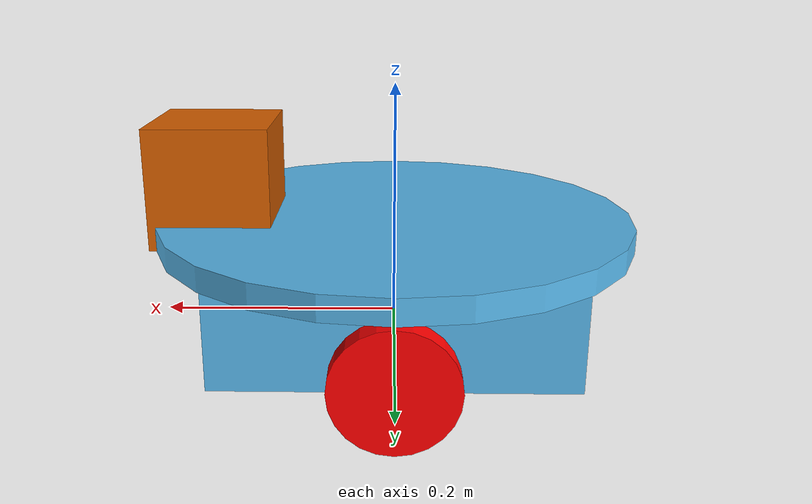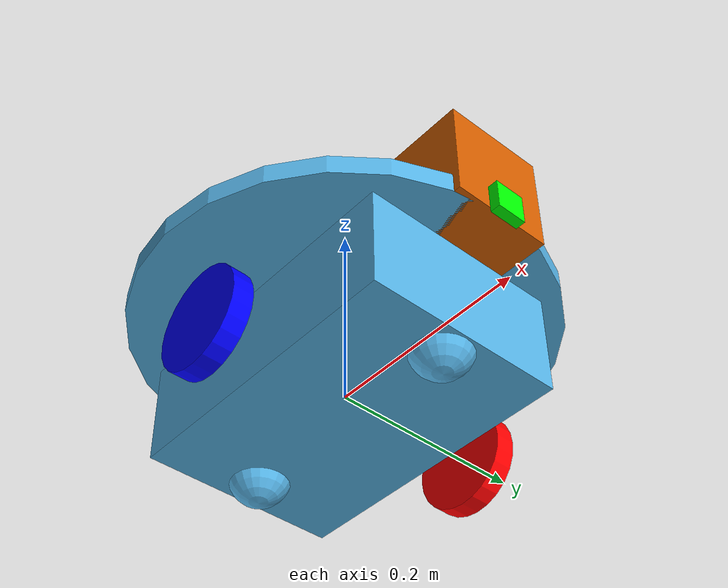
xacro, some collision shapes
<?xml version='1.0'?>

<robot name="my_robot" xmlns:xacro="http://www.ros.org/wiki/xacro">
    <!-- include plugin settings -->
    <xacro:include filename="$(find mmw_robot)/urdf/my_robot.gazebo" />

    <!-- define robot links -->
    <link name="robot_footprint"></link>

    <link name="chassis">
        <pose>0 0 0.05 0 0 0</pose>

        <inertial>
            <mass value="5.0" />
            <origin xyz="0 0 0" rpy="0 0 0" />
            <inertia
                ixx="0.1" ixy="0" ixz="0"
                iyy="0.1" iyz="0"
                izz="0.1"
            />
        </inertial>

        <!-- wheel base -->
        <collision name="wheel_base_col">
            <origin xyz="0 0 0.02" rpy="0 0 0" />
            <geometry>
                <box size="0.30 0.20 0.10" />
            </geometry>
        </collision>

        <visual name="wheel_base_vis">
            <origin xyz="0 0 0.02" rpy="0 0 0" />
            <geometry>
                <box size="0.30 0.20 0.10" />
            </geometry>
        </visual>

        <!-- top plate -->
        <collision name="plate_col">
            <origin xyz="0 0 0.08" rpy="0 0 0" />
            <geometry>
                <cylinder radius="0.2" length="0.02" />
            </geometry>
        </collision>

        <visual name="plate_vis">
            <origin xyz="0 0 0.08" rpy="0 0 0" />
            <geometry>
                <cylinder radius="0.2" length="0.02" />
            </geometry>
        </visual>

        <!-- front caster -->
        <collision name="front_caster_col">
            <origin xyz="0.12 0 -0.02" rpy="0 0 0" />
            <geometry>
                <sphere radius="0.03" />
            </geometry>
        </collision>

        <visual name="front_caster_vis">
            <origin xyz="0.12 0 -0.02" rpy="0 0 0" />
            <geometry>
                <sphere radius="0.03" />
            </geometry>
        </visual>

        <!-- back caster -->
        <collision name="back_caster_col">
            <origin xyz="-0.12 0 -0.02" rpy="0 0 0" />
            <geometry>
                <sphere radius="0.03" />
            </geometry>
        </collision>

        <visual name="back_caster_vis">
            <origin xyz="-0.12 0 -0.02" rpy="0 0 0" />
            <geometry>
                <sphere radius="0.03" />
            </geometry>
        </visual>
    </link>

    <link name="left_wheel">
        <inertial>
            <mass value="1.0" />
            <origin xyz="0 0 0" rpy="0.0 1.5707 1.5707" />
            <inertia
                ixx="0.1" ixy="0.0" ixz="0.0"
                iyy="0.1" iyz="0.0"
                izz="0.1" />
        </inertial>

        <collision name="left_wheel_col">
            <origin xyz="0 0 0" rpy="0.0 1.5707 1.5707" />
            <geometry>
                <cylinder radius="0.05" length="0.02" />
            </geometry>
        </collision>

        <visual name="left_wheel_vis">
            <origin xyz="0 0 0" rpy="0.0 1.5707 1.5707" />
            <geometry>
                <cylinder radius="0.05" length="0.02" />
            </geometry>
            <material name="red">
                <color rgba="1.0 0.0 0.0 1.0" />
            </material>
        </visual>
    </link>

    <link name="right_wheel">
        <inertial>
            <mass value="1.0" />
            <origin xyz="0 0 0" rpy="0.0 1.5707 1.5707" />
            <inertia
                ixx="0.1" ixy="0.0" ixz="0.0"
                iyy="0.1" iyz="0.0"
                izz="0.1" />
        </inertial>

        <collision name="right_wheel_col">
            <origin xyz="0 0 0" rpy="0.0 1.5707 1.5707" />
            <geometry>
                <cylinder radius="0.05" length="0.02" />
            </geometry>
        </collision>

        <visual name="right_wheel_vis">
            <origin xyz="0 0 0" rpy="0.0 1.5707 1.5707" />
            <geometry>
                <cylinder radius="0.05" length="0.02" />
            </geometry>
            <material name="blue">
                <color rgba="0.0 0.0 1.0 1.0" />
            </material>
        </visual>
    </link>

    <link name="camera">
        <inertial>
            <mass value="0.1" />
            <origin xyz="0 0 0" rpy="0 0 0" />
            <inertia
                ixx="1e-6" ixy="0" ixz="0"
                iyy="1e-6" iyz="0"
                izz="1e-6" />
        </inertial>

        <collision name="camera_col">
            <origin xyz="0 0 0" rpy="0 0 0" />
            <geometry>
                <box size="0.01 0.03 0.03" />
            </geometry>
        </collision>

        <visual name="camera_vis">
            <origin xyz="0 0 0" rpy="0 0 0" />
            <geometry>
                <box size="0.01 0.03 0.03" />
            </geometry>
            <material name="green">
                <color rgba="0.0 1.0 0.0 1.0" />
            </material>
        </visual>
    </link>

    <link name="hokuyo">
        <inertial>
            <mass value="0.10" />
            <origin xyz="0 0 0" rpy="0 0 0" />
            <inertia
                ixx="1e-6" ixy="0" ixz="0"
                iyy="1e-6" iyz="0"
                izz="1e-6" />
        </inertial>

         <collision name="urg_col">
            <origin xyz="0 0 0" rpy="0 0 0" />
            <geometry>
                <box size="0.1 0.1 0.1" />
            </geometry>
        </collision>

        <visual name="urg_vis">
            <origin xyz="0 0 0" rpy="0 0 0" />
            <geometry>
                <mesh filename="package://my_robot/meshes/hokuyo.dae" />
            </geometry>
        </visual>
    </link>

    <link name="camera_link_optical" >
    </link>

    <!-- define robot joints -->
    <joint name="robot_footprint_joint" type="fixed">
        <origin xyz="0 0 0" rpy="0 0 0" />
        <parent link="robot_footprint" />
        <child link="chassis" />
    </joint>

    <joint name="left_wheel_hinge" type="continuous">
        <origin xyz="0.0 0.15 0.0" rpy="0 0 0" />
        <parent link="chassis" />
        <child link="left_wheel" />
        <axis xyz="0 1 0" rpy="0 0 0" />
        <limit effort="1000" velocity="1000" />
        <dynamics damping="1.0" friction="1.0" />
    </joint>

    <joint name="right_wheel_hinge" type="continuous">
        <origin xyz="0.0 -0.15 0.0" rpy="0 0 0" />
        <parent link="chassis" />
        <child link="right_wheel" />
        <axis xyz="0 1 0" rpy="0 0 0" />
        <limit effort="1000" velocity="1000" />
        <dynamics damping="1.0" friction="1.0" />
    </joint>

    <joint name="camera_joint" type="fixed">
        <origin xyz="0.205 0.0 0.08" rpy="0 0 0" />
        <parent link="chassis" />
        <child link="camera" />
        <axis xyz="0 1 0" rpy="0 0 0" />
    </joint>

    <joint name="hokuyo_joint" type="fixed">
        <origin xyz="0.15 0.0 0.12" rpy="0 0 0" />
        <parent link="chassis" />
        <child link="hokuyo" />
        <axis xyz="0 1 0" rpy="0 0 0" />
    </joint>

    <joint name="camera_optical_joint" type="fixed" >
        <origin xyz="0 0 0" rpy="-1.5707 0 -1.5707" />
        <parent link="camera" />
        <child link="camera_link_optical" />
    </joint>
</robot>
